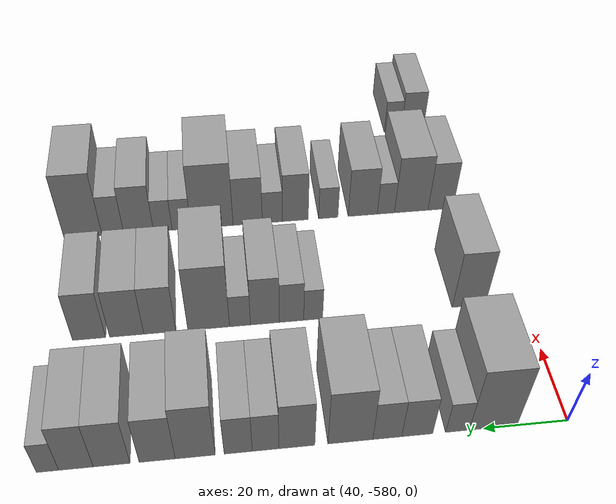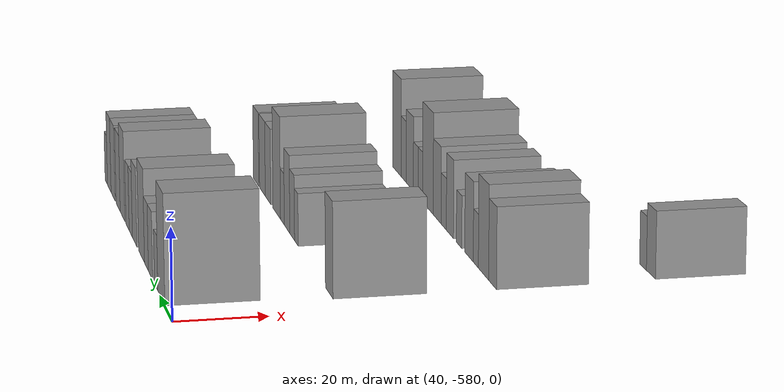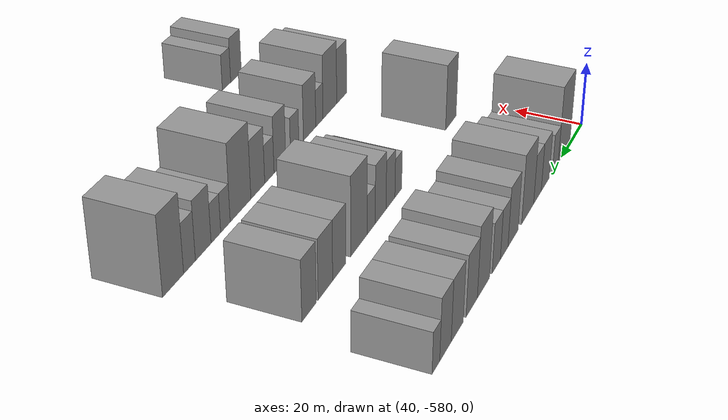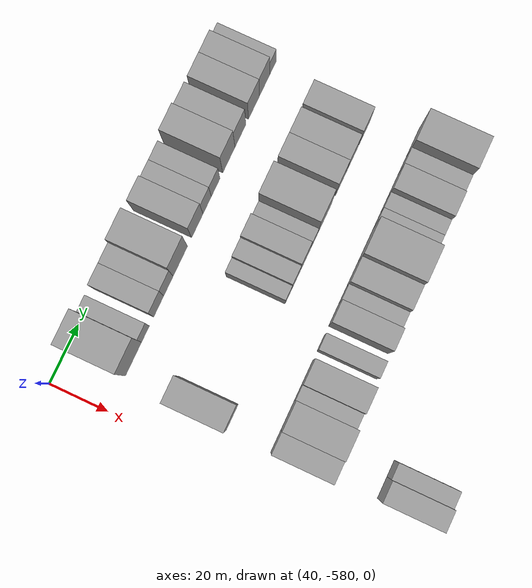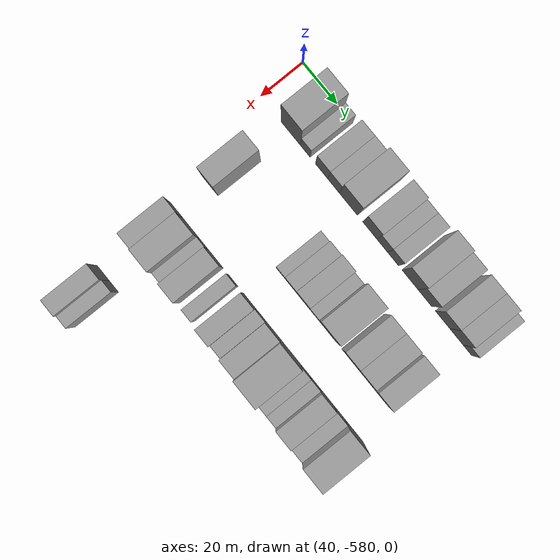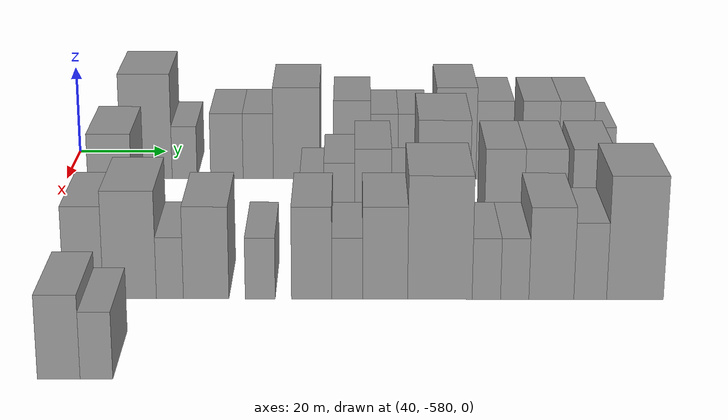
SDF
<sdf version="1.6">
 <world name="default">
  <model name="building_1">
   <static>1</static>
   <pose>50.0000 -562.3238 0 0.000000 0.000000 0.000000</pose>
   <link name="link">
    <pose>0 0 12.00 0 0 0</pose>
    <collision name="collision"><geometry><box><size>20.0000 11.3523 24.0000</size></box></geometry></collision>
    <visual name="visual">
     <cast_shadows>0</cast_shadows>
     <geometry><box><size>20.0000 11.3523 24.0000</size></box></geometry>
     <material>
      <script>
       <uri>model://grey_wall/materials/scripts</uri>
       <uri>model://grey_wall/materials/textures</uri>
       <name>vrc/grey_wall</name>
      </script>
     </material>
    </visual>
   </link>
  </model>
  <model name="building_2">
   <static>1</static>
   <pose>50.0000 -553.8792 0 0.000000 0.000000 0.000000</pose>
   <link name="link">
    <pose>0 0 6.00 0 0 0</pose>
    <collision name="collision"><geometry><box><size>20.0000 5.5368 12.0000</size></box></geometry></collision>
    <visual name="visual">
     <cast_shadows>0</cast_shadows>
     <geometry><box><size>20.0000 5.5368 12.0000</size></box></geometry>
     <material>
      <script>
       <uri>model://grey_wall/materials/scripts</uri>
       <uri>model://grey_wall/materials/textures</uri>
       <name>vrc/grey_wall</name>
      </script>
     </material>
    </visual>
   </link>
  </model>
  <model name="building_3">
   <static>1</static>
   <pose>50.0000 -544.5007 0 0.000000 0.000000 0.000000</pose>
   <link name="link">
    <pose>0 0 7.50 0 0 0</pose>
    <collision name="collision"><geometry><box><size>20.0000 7.2203 15.0000</size></box></geometry></collision>
    <visual name="visual">
     <cast_shadows>0</cast_shadows>
     <geometry><box><size>20.0000 7.2203 15.0000</size></box></geometry>
     <material>
      <script>
       <uri>model://grey_wall/materials/scripts</uri>
       <uri>model://grey_wall/materials/textures</uri>
       <name>vrc/grey_wall</name>
      </script>
     </material>
    </visual>
   </link>
  </model>
  <model name="building_4">
   <static>1</static>
   <pose>50.0000 -537.5325 0 0.000000 0.000000 0.000000</pose>
   <link name="link">
    <pose>0 0 7.50 0 0 0</pose>
    <collision name="collision"><geometry><box><size>20.0000 6.7162 15.0000</size></box></geometry></collision>
    <visual name="visual">
     <cast_shadows>0</cast_shadows>
     <geometry><box><size>20.0000 6.7162 15.0000</size></box></geometry>
     <material>
      <script>
       <uri>model://grey_wall/materials/scripts</uri>
       <uri>model://grey_wall/materials/textures</uri>
       <name>vrc/grey_wall</name>
      </script>
     </material>
    </visual>
   </link>
  </model>
  <model name="building_5">
   <static>1</static>
   <pose>50.0000 -528.9999 0 0.000000 0.000000 0.000000</pose>
   <link name="link">
    <pose>0 0 10.50 0 0 0</pose>
    <collision name="collision"><geometry><box><size>20.0000 10.3490 21.0000</size></box></geometry></collision>
    <visual name="visual">
     <cast_shadows>0</cast_shadows>
     <geometry><box><size>20.0000 10.3490 21.0000</size></box></geometry>
     <material>
      <script>
       <uri>model://grey_wall/materials/scripts</uri>
       <uri>model://grey_wall/materials/textures</uri>
       <name>vrc/grey_wall</name>
      </script>
     </material>
    </visual>
   </link>
  </model>
  <model name="building_6">
   <static>1</static>
   <pose>50.0000 -516.7189 0 0.000000 0.000000 0.000000</pose>
   <link name="link">
    <pose>0 0 9.00 0 0 0</pose>
    <collision name="collision"><geometry><box><size>20.0000 8.2130 18.0000</size></box></geometry></collision>
    <visual name="visual">
     <cast_shadows>0</cast_shadows>
     <geometry><box><size>20.0000 8.2130 18.0000</size></box></geometry>
     <material>
      <script>
       <uri>model://grey_wall/materials/scripts</uri>
       <uri>model://grey_wall/materials/textures</uri>
       <name>vrc/grey_wall</name>
      </script>
     </material>
    </visual>
   </link>
  </model>
  <model name="building_7">
   <static>1</static>
   <pose>50.0000 -509.5909 0 0.000000 0.000000 0.000000</pose>
   <link name="link">
    <pose>0 0 7.50 0 0 0</pose>
    <collision name="collision"><geometry><box><size>20.0000 6.0429 15.0000</size></box></geometry></collision>
    <visual name="visual">
     <cast_shadows>0</cast_shadows>
     <geometry><box><size>20.0000 6.0429 15.0000</size></box></geometry>
     <material>
      <script>
       <uri>model://grey_wall/materials/scripts</uri>
       <uri>model://grey_wall/materials/textures</uri>
       <name>vrc/grey_wall</name>
      </script>
     </material>
    </visual>
   </link>
  </model>
  <model name="building_8">
   <static>1</static>
   <pose>50.0000 -503.3961 0 0.000000 0.000000 0.000000</pose>
   <link name="link">
    <pose>0 0 7.50 0 0 0</pose>
    <collision name="collision"><geometry><box><size>20.0000 6.3468 15.0000</size></box></geometry></collision>
    <visual name="visual">
     <cast_shadows>0</cast_shadows>
     <geometry><box><size>20.0000 6.3468 15.0000</size></box></geometry>
     <material>
      <script>
       <uri>model://grey_wall/materials/scripts</uri>
       <uri>model://grey_wall/materials/textures</uri>
       <name>vrc/grey_wall</name>
      </script>
     </material>
    </visual>
   </link>
  </model>
  <model name="building_9">
   <static>1</static>
   <pose>50.0000 -493.7386 0 0.000000 0.000000 0.000000</pose>
   <link name="link">
    <pose>0 0 10.50 0 0 0</pose>
    <collision name="collision"><geometry><box><size>20.0000 8.9681 21.0000</size></box></geometry></collision>
    <visual name="visual">
     <cast_shadows>0</cast_shadows>
     <geometry><box><size>20.0000 8.9681 21.0000</size></box></geometry>
     <material>
      <script>
       <uri>model://grey_wall/materials/scripts</uri>
       <uri>model://grey_wall/materials/textures</uri>
       <name>vrc/grey_wall</name>
      </script>
     </material>
    </visual>
   </link>
  </model>
  <model name="building_10">
   <static>1</static>
   <pose>50.0000 -485.2229 0 0.000000 0.000000 0.000000</pose>
   <link name="link">
    <pose>0 0 9.00 0 0 0</pose>
    <collision name="collision"><geometry><box><size>20.0000 8.0634 18.0000</size></box></geometry></collision>
    <visual name="visual">
     <cast_shadows>0</cast_shadows>
     <geometry><box><size>20.0000 8.0634 18.0000</size></box></geometry>
     <material>
      <script>
       <uri>model://grey_wall/materials/scripts</uri>
       <uri>model://grey_wall/materials/textures</uri>
       <name>vrc/grey_wall</name>
      </script>
     </material>
    </visual>
   </link>
  </model>
  <model name="building_11">
   <static>1</static>
   <pose>50.0000 -475.1178 0 0.000000 0.000000 0.000000</pose>
   <link name="link">
    <pose>0 0 9.00 0 0 0</pose>
    <collision name="collision"><geometry><box><size>20.0000 8.1467 18.0000</size></box></geometry></collision>
    <visual name="visual">
     <cast_shadows>0</cast_shadows>
     <geometry><box><size>20.0000 8.1467 18.0000</size></box></geometry>
     <material>
      <script>
       <uri>model://grey_wall/materials/scripts</uri>
       <uri>model://grey_wall/materials/textures</uri>
       <name>vrc/grey_wall</name>
      </script>
     </material>
    </visual>
   </link>
  </model>
  <model name="building_12">
   <static>1</static>
   <pose>50.0000 -467.2561 0 0.000000 0.000000 0.000000</pose>
   <link name="link">
    <pose>0 0 9.00 0 0 0</pose>
    <collision name="collision"><geometry><box><size>20.0000 7.5766 18.0000</size></box></geometry></collision>
    <visual name="visual">
     <cast_shadows>0</cast_shadows>
     <geometry><box><size>20.0000 7.5766 18.0000</size></box></geometry>
     <material>
      <script>
       <uri>model://grey_wall/materials/scripts</uri>
       <uri>model://grey_wall/materials/textures</uri>
       <name>vrc/grey_wall</name>
      </script>
     </material>
    </visual>
   </link>
  </model>
  <model name="building_13">
   <static>1</static>
   <pose>50.0000 -461.0217 0 0.000000 0.000000 0.000000</pose>
   <link name="link">
    <pose>0 0 6.00 0 0 0</pose>
    <collision name="collision"><geometry><box><size>20.0000 4.8921 12.0000</size></box></geometry></collision>
    <visual name="visual">
     <cast_shadows>0</cast_shadows>
     <geometry><box><size>20.0000 4.8921 12.0000</size></box></geometry>
     <material>
      <script>
       <uri>model://grey_wall/materials/scripts</uri>
       <uri>model://grey_wall/materials/textures</uri>
       <name>vrc/grey_wall</name>
      </script>
     </material>
    </visual>
   </link>
  </model>
  <model name="building_127">
   <static>1</static>
   <pose>85.0000 -565.6009 0 0.000000 0.000000 0.000000</pose>
   <link name="link">
    <pose>0 0 10.50 0 0 0</pose>
    <collision name="collision"><geometry><box><size>20.0000 8.7983 21.0000</size></box></geometry></collision>
    <visual name="visual">
     <cast_shadows>0</cast_shadows>
     <geometry><box><size>20.0000 8.7983 21.0000</size></box></geometry>
     <material>
      <script>
       <uri>model://grey_wall/materials/scripts</uri>
       <uri>model://grey_wall/materials/textures</uri>
       <name>vrc/grey_wall</name>
      </script>
     </material>
    </visual>
   </link>
  </model>
  <model name="building_128">
   <static>1</static>
   <pose>85.0000 -524.8946 0 0.000000 0.000000 0.000000</pose>
   <link name="link">
    <pose>0 0 6.00 0 0 0</pose>
    <collision name="collision"><geometry><box><size>20.0000 4.8714 12.0000</size></box></geometry></collision>
    <visual name="visual">
     <cast_shadows>0</cast_shadows>
     <geometry><box><size>20.0000 4.8714 12.0000</size></box></geometry>
     <material>
      <script>
       <uri>model://grey_wall/materials/scripts</uri>
       <uri>model://grey_wall/materials/textures</uri>
       <name>vrc/grey_wall</name>
      </script>
     </material>
    </visual>
   </link>
  </model>
  <model name="building_129">
   <static>1</static>
   <pose>85.0000 -519.3416 0 0.000000 0.000000 0.000000</pose>
   <link name="link">
    <pose>0 0 7.50 0 0 0</pose>
    <collision name="collision"><geometry><box><size>20.0000 6.2346 15.0000</size></box></geometry></collision>
    <visual name="visual">
     <cast_shadows>0</cast_shadows>
     <geometry><box><size>20.0000 6.2346 15.0000</size></box></geometry>
     <material>
      <script>
       <uri>model://grey_wall/materials/scripts</uri>
       <uri>model://grey_wall/materials/textures</uri>
       <name>vrc/grey_wall</name>
      </script>
     </material>
    </visual>
   </link>
  </model>
  <model name="building_130">
   <static>1</static>
   <pose>85.0000 -512.5142 0 0.000000 0.000000 0.000000</pose>
   <link name="link">
    <pose>0 0 9.00 0 0 0</pose>
    <collision name="collision"><geometry><box><size>20.0000 7.4202 18.0000</size></box></geometry></collision>
    <visual name="visual">
     <cast_shadows>0</cast_shadows>
     <geometry><box><size>20.0000 7.4202 18.0000</size></box></geometry>
     <material>
      <script>
       <uri>model://grey_wall/materials/scripts</uri>
       <uri>model://grey_wall/materials/textures</uri>
       <name>vrc/grey_wall</name>
      </script>
     </material>
    </visual>
   </link>
  </model>
  <model name="building_131">
   <static>1</static>
   <pose>85.0000 -506.1411 0 0.000000 0.000000 0.000000</pose>
   <link name="link">
    <pose>0 0 6.00 0 0 0</pose>
    <collision name="collision"><geometry><box><size>20.0000 5.3259 12.0000</size></box></geometry></collision>
    <visual name="visual">
     <cast_shadows>0</cast_shadows>
     <geometry><box><size>20.0000 5.3259 12.0000</size></box></geometry>
     <material>
      <script>
       <uri>model://grey_wall/materials/scripts</uri>
       <uri>model://grey_wall/materials/textures</uri>
       <name>vrc/grey_wall</name>
      </script>
     </material>
    </visual>
   </link>
  </model>
  <model name="building_132">
   <static>1</static>
   <pose>85.0000 -498.1919 0 0.000000 0.000000 0.000000</pose>
   <link name="link">
    <pose>0 0 12.00 0 0 0</pose>
    <collision name="collision"><geometry><box><size>20.0000 10.5726 24.0000</size></box></geometry></collision>
    <visual name="visual">
     <cast_shadows>0</cast_shadows>
     <geometry><box><size>20.0000 10.5726 24.0000</size></box></geometry>
     <material>
      <script>
       <uri>model://grey_wall/materials/scripts</uri>
       <uri>model://grey_wall/materials/textures</uri>
       <name>vrc/grey_wall</name>
      </script>
     </material>
    </visual>
   </link>
  </model>
  <model name="building_133">
   <static>1</static>
   <pose>85.0000 -485.8821 0 0.000000 0.000000 0.000000</pose>
   <link name="link">
    <pose>0 0 9.00 0 0 0</pose>
    <collision name="collision"><geometry><box><size>20.0000 8.0468 18.0000</size></box></geometry></collision>
    <visual name="visual">
     <cast_shadows>0</cast_shadows>
     <geometry><box><size>20.0000 8.0468 18.0000</size></box></geometry>
     <material>
      <script>
       <uri>model://grey_wall/materials/scripts</uri>
       <uri>model://grey_wall/materials/textures</uri>
       <name>vrc/grey_wall</name>
      </script>
     </material>
    </visual>
   </link>
  </model>
  <model name="building_134">
   <static>1</static>
   <pose>85.0000 -477.5785 0 0.000000 0.000000 0.000000</pose>
   <link name="link">
    <pose>0 0 9.00 0 0 0</pose>
    <collision name="collision"><geometry><box><size>20.0000 8.5605 18.0000</size></box></geometry></collision>
    <visual name="visual">
     <cast_shadows>0</cast_shadows>
     <geometry><box><size>20.0000 8.5605 18.0000</size></box></geometry>
     <material>
      <script>
       <uri>model://grey_wall/materials/scripts</uri>
       <uri>model://grey_wall/materials/textures</uri>
       <name>vrc/grey_wall</name>
      </script>
     </material>
    </visual>
   </link>
  </model>
  <model name="building_135">
   <static>1</static>
   <pose>85.0000 -468.1888 0 0.000000 0.000000 0.000000</pose>
   <link name="link">
    <pose>0 0 9.00 0 0 0</pose>
    <collision name="collision"><geometry><box><size>20.0000 8.2189 18.0000</size></box></geometry></collision>
    <visual name="visual">
     <cast_shadows>0</cast_shadows>
     <geometry><box><size>20.0000 8.2189 18.0000</size></box></geometry>
     <material>
      <script>
       <uri>model://grey_wall/materials/scripts</uri>
       <uri>model://grey_wall/materials/textures</uri>
       <name>vrc/grey_wall</name>
      </script>
     </material>
    </visual>
   </link>
  </model>
  <model name="building_247">
   <static>1</static>
   <pose>120.0000 -566.3362 0 0.000000 0.000000 0.000000</pose>
   <link name="link">
    <pose>0 0 9.00 0 0 0</pose>
    <collision name="collision"><geometry><box><size>20.0000 7.3275 18.0000</size></box></geometry></collision>
    <visual name="visual">
     <cast_shadows>0</cast_shadows>
     <geometry><box><size>20.0000 7.3275 18.0000</size></box></geometry>
     <material>
      <script>
       <uri>model://grey_wall/materials/scripts</uri>
       <uri>model://grey_wall/materials/textures</uri>
       <name>vrc/grey_wall</name>
      </script>
     </material>
    </visual>
   </link>
  </model>
  <model name="building_248">
   <static>1</static>
   <pose>120.0000 -557.7643 0 0.000000 0.000000 0.000000</pose>
   <link name="link">
    <pose>0 0 10.50 0 0 0</pose>
    <collision name="collision"><geometry><box><size>20.0000 9.8164 21.0000</size></box></geometry></collision>
    <visual name="visual">
     <cast_shadows>0</cast_shadows>
     <geometry><box><size>20.0000 9.8164 21.0000</size></box></geometry>
     <material>
      <script>
       <uri>model://grey_wall/materials/scripts</uri>
       <uri>model://grey_wall/materials/textures</uri>
       <name>vrc/grey_wall</name>
      </script>
     </material>
    </visual>
   </link>
  </model>
  <model name="building_249">
   <static>1</static>
   <pose>120.0000 -550.3640 0 0.000000 0.000000 0.000000</pose>
   <link name="link">
    <pose>0 0 6.00 0 0 0</pose>
    <collision name="collision"><geometry><box><size>20.0000 4.9840 12.0000</size></box></geometry></collision>
    <visual name="visual">
     <cast_shadows>0</cast_shadows>
     <geometry><box><size>20.0000 4.9840 12.0000</size></box></geometry>
     <material>
      <script>
       <uri>model://grey_wall/materials/scripts</uri>
       <uri>model://grey_wall/materials/textures</uri>
       <name>vrc/grey_wall</name>
      </script>
     </material>
    </visual>
   </link>
  </model>
  <model name="building_250">
   <static>1</static>
   <pose>120.0000 -543.6661 0 0.000000 0.000000 0.000000</pose>
   <link name="link">
    <pose>0 0 9.00 0 0 0</pose>
    <collision name="collision"><geometry><box><size>20.0000 8.4117 18.0000</size></box></geometry></collision>
    <visual name="visual">
     <cast_shadows>0</cast_shadows>
     <geometry><box><size>20.0000 8.4117 18.0000</size></box></geometry>
     <material>
      <script>
       <uri>model://grey_wall/materials/scripts</uri>
       <uri>model://grey_wall/materials/textures</uri>
       <name>vrc/grey_wall</name>
      </script>
     </material>
    </visual>
   </link>
  </model>
  <model name="building_251">
   <static>1</static>
   <pose>120.0000 -533.6906 0 0.000000 0.000000 0.000000</pose>
   <link name="link">
    <pose>0 0 6.00 0 0 0</pose>
    <collision name="collision"><geometry><box><size>20.0000 5.5394 12.0000</size></box></geometry></collision>
    <visual name="visual">
     <cast_shadows>0</cast_shadows>
     <geometry><box><size>20.0000 5.5394 12.0000</size></box></geometry>
     <material>
      <script>
       <uri>model://grey_wall/materials/scripts</uri>
       <uri>model://grey_wall/materials/textures</uri>
       <name>vrc/grey_wall</name>
      </script>
     </material>
    </visual>
   </link>
  </model>
  <model name="building_252">
   <static>1</static>
   <pose>120.0000 -524.2182 0 0.000000 0.000000 0.000000</pose>
   <link name="link">
    <pose>0 0 9.00 0 0 0</pose>
    <collision name="collision"><geometry><box><size>20.0000 7.4052 18.0000</size></box></geometry></collision>
    <visual name="visual">
     <cast_shadows>0</cast_shadows>
     <geometry><box><size>20.0000 7.4052 18.0000</size></box></geometry>
     <material>
      <script>
       <uri>model://grey_wall/materials/scripts</uri>
       <uri>model://grey_wall/materials/textures</uri>
       <name>vrc/grey_wall</name>
      </script>
     </material>
    </visual>
   </link>
  </model>
  <model name="building_253">
   <static>1</static>
   <pose>120.0000 -517.6586 0 0.000000 0.000000 0.000000</pose>
   <link name="link">
    <pose>0 0 6.00 0 0 0</pose>
    <collision name="collision"><geometry><box><size>20.0000 5.7141 12.0000</size></box></geometry></collision>
    <visual name="visual">
     <cast_shadows>0</cast_shadows>
     <geometry><box><size>20.0000 5.7141 12.0000</size></box></geometry>
     <material>
      <script>
       <uri>model://grey_wall/materials/scripts</uri>
       <uri>model://grey_wall/materials/textures</uri>
       <name>vrc/grey_wall</name>
      </script>
     </material>
    </visual>
   </link>
  </model>
  <model name="building_254">
   <static>1</static>
   <pose>120.0000 -510.6552 0 0.000000 0.000000 0.000000</pose>
   <link name="link">
    <pose>0 0 9.00 0 0 0</pose>
    <collision name="collision"><geometry><box><size>20.0000 8.2926 18.0000</size></box></geometry></collision>
    <visual name="visual">
     <cast_shadows>0</cast_shadows>
     <geometry><box><size>20.0000 8.2926 18.0000</size></box></geometry>
     <material>
      <script>
       <uri>model://grey_wall/materials/scripts</uri>
       <uri>model://grey_wall/materials/textures</uri>
       <name>vrc/grey_wall</name>
      </script>
     </material>
    </visual>
   </link>
  </model>
  <model name="building_255">
   <static>1</static>
   <pose>120.0000 -500.5553 0 0.000000 0.000000 0.000000</pose>
   <link name="link">
    <pose>0 0 12.00 0 0 0</pose>
    <collision name="collision"><geometry><box><size>20.0000 11.9072 24.0000</size></box></geometry></collision>
    <visual name="visual">
     <cast_shadows>0</cast_shadows>
     <geometry><box><size>20.0000 11.9072 24.0000</size></box></geometry>
     <material>
      <script>
       <uri>model://grey_wall/materials/scripts</uri>
       <uri>model://grey_wall/materials/textures</uri>
       <name>vrc/grey_wall</name>
      </script>
     </material>
    </visual>
   </link>
  </model>
  <model name="building_256">
   <static>1</static>
   <pose>120.0000 -491.9775 0 0.000000 0.000000 0.000000</pose>
   <link name="link">
    <pose>0 0 6.00 0 0 0</pose>
    <collision name="collision"><geometry><box><size>20.0000 5.2485 12.0000</size></box></geometry></collision>
    <visual name="visual">
     <cast_shadows>0</cast_shadows>
     <geometry><box><size>20.0000 5.2485 12.0000</size></box></geometry>
     <material>
      <script>
       <uri>model://grey_wall/materials/scripts</uri>
       <uri>model://grey_wall/materials/textures</uri>
       <name>vrc/grey_wall</name>
      </script>
     </material>
    </visual>
   </link>
  </model>
  <model name="building_257">
   <static>1</static>
   <pose>120.0000 -486.7453 0 0.000000 0.000000 0.000000</pose>
   <link name="link">
    <pose>0 0 6.00 0 0 0</pose>
    <collision name="collision"><geometry><box><size>20.0000 5.2160 12.0000</size></box></geometry></collision>
    <visual name="visual">
     <cast_shadows>0</cast_shadows>
     <geometry><box><size>20.0000 5.2160 12.0000</size></box></geometry>
     <material>
      <script>
       <uri>model://grey_wall/materials/scripts</uri>
       <uri>model://grey_wall/materials/textures</uri>
       <name>vrc/grey_wall</name>
      </script>
     </material>
    </visual>
   </link>
  </model>
  <model name="building_258">
   <static>1</static>
   <pose>120.0000 -479.9968 0 0.000000 0.000000 0.000000</pose>
   <link name="link">
    <pose>0 0 9.00 0 0 0</pose>
    <collision name="collision"><geometry><box><size>20.0000 8.2809 18.0000</size></box></geometry></collision>
    <visual name="visual">
     <cast_shadows>0</cast_shadows>
     <geometry><box><size>20.0000 8.2809 18.0000</size></box></geometry>
     <material>
      <script>
       <uri>model://grey_wall/materials/scripts</uri>
       <uri>model://grey_wall/materials/textures</uri>
       <name>vrc/grey_wall</name>
      </script>
     </material>
    </visual>
   </link>
  </model>
  <model name="building_259">
   <static>1</static>
   <pose>120.0000 -472.8358 0 0.000000 0.000000 0.000000</pose>
   <link name="link">
    <pose>0 0 7.50 0 0 0</pose>
    <collision name="collision"><geometry><box><size>20.0000 6.0411 15.0000</size></box></geometry></collision>
    <visual name="visual">
     <cast_shadows>0</cast_shadows>
     <geometry><box><size>20.0000 6.0411 15.0000</size></box></geometry>
     <material>
      <script>
       <uri>model://grey_wall/materials/scripts</uri>
       <uri>model://grey_wall/materials/textures</uri>
       <name>vrc/grey_wall</name>
      </script>
     </material>
    </visual>
   </link>
  </model>
  <model name="building_260">
   <static>1</static>
   <pose>120.0000 -464.5844 0 0.000000 0.000000 0.000000</pose>
   <link name="link">
    <pose>0 0 12.00 0 0 0</pose>
    <collision name="collision"><geometry><box><size>20.0000 10.4617 24.0000</size></box></geometry></collision>
    <visual name="visual">
     <cast_shadows>0</cast_shadows>
     <geometry><box><size>20.0000 10.4617 24.0000</size></box></geometry>
     <material>
      <script>
       <uri>model://grey_wall/materials/scripts</uri>
       <uri>model://grey_wall/materials/textures</uri>
       <name>vrc/grey_wall</name>
      </script>
     </material>
    </visual>
   </link>
  </model>
  <model name="building_373">
   <static>1</static>
   <pose>155.0000 -565.4442 0 0.000000 0.000000 0.000000</pose>
   <link name="link">
    <pose>0 0 7.50 0 0 0</pose>
    <collision name="collision"><geometry><box><size>20.0000 7.1115 15.0000</size></box></geometry></collision>
    <visual name="visual">
     <cast_shadows>0</cast_shadows>
     <geometry><box><size>20.0000 7.1115 15.0000</size></box></geometry>
     <material>
      <script>
       <uri>model://grey_wall/materials/scripts</uri>
       <uri>model://grey_wall/materials/textures</uri>
       <name>vrc/grey_wall</name>
      </script>
     </material>
    </visual>
   </link>
  </model>
  <model name="building_374">
   <static>1</static>
   <pose>155.0000 -559.1676 0 0.000000 0.000000 0.000000</pose>
   <link name="link">
    <pose>0 0 6.00 0 0 0</pose>
    <collision name="collision"><geometry><box><size>20.0000 5.4419 12.0000</size></box></geometry></collision>
    <visual name="visual">
     <cast_shadows>0</cast_shadows>
     <geometry><box><size>20.0000 5.4419 12.0000</size></box></geometry>
     <material>
      <script>
       <uri>model://grey_wall/materials/scripts</uri>
       <uri>model://grey_wall/materials/textures</uri>
       <name>vrc/grey_wall</name>
      </script>
     </material>
    </visual>
   </link>
  </model>
 </world>
</sdf>
